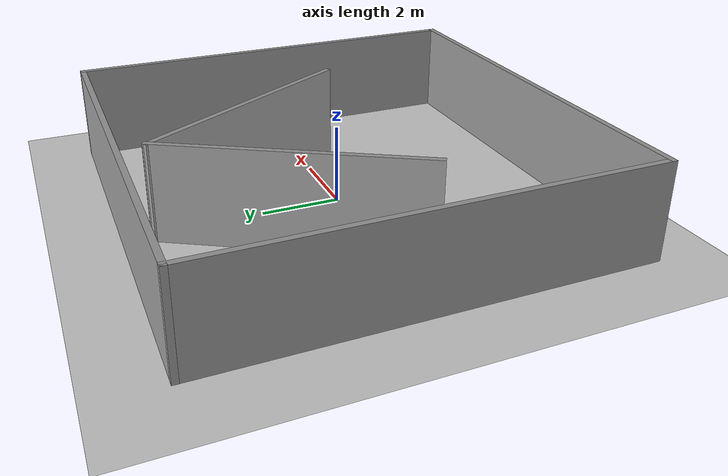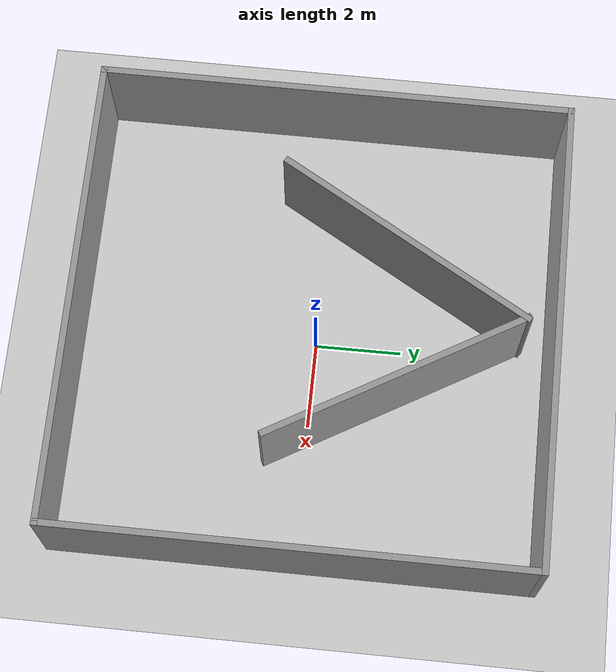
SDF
<sdf version="1.7">
 <world name="default">
  <light name="sun" type="directional">
   <pose>0 0 10 0 -0 0</pose>
   <diffuse>0.8 0.8 0.8 1</diffuse>
   <specular>0.1 0.1 0.1 1</specular>
   <attenuation>
    <range>1000</range>
    <constant>0.9</constant>
    <linear>0.01</linear>
    <quadratic>0.001</quadratic>
   </attenuation>
   <direction>-0.5 0.5 -1</direction>
   <spot><inner_angle>0</inner_angle><outer_angle>0</outer_angle><falloff>0</falloff></spot>
  </light>
  <model name="ground_plane">
   <static>1</static>
   <link name="link">
    <collision name="collision">
     <geometry><plane><normal>0 0 1</normal><size>100 100</size></plane></geometry>
     <surface><friction><ode><mu>100</mu><mu2>50</mu2></ode></friction></surface>
    </collision>
    <visual name="visual">
     <cast_shadows>0</cast_shadows>
     <geometry><plane><normal>0 0 1</normal><size>100 100</size></plane></geometry>
     <material>
      <script><uri>file://media/materials/scripts/gazebo.material</uri><name>Gazebo/Grey</name></script>
     </material>
    </visual>
   </link>
  </model>
  <gravity>0 0 -9.8</gravity>
  <magnetic_field>6e-06 2.3e-05 -4.2e-05</magnetic_field>
  <atmosphere type="adiabatic"/>
  <physics name="default_physics" default="0" type="ode">
   <max_step_size>0.001</max_step_size>
   <real_time_factor>1</real_time_factor>
   <real_time_update_rate>1000</real_time_update_rate>
  </physics>
  <scene><ambient>0.4 0.4 0.4 1</ambient><background>0.7 0.7 0.7 1</background><shadows>1</shadows></scene>
  <spherical_coordinates>
   <surface_model>EARTH_WGS84</surface_model>
   <latitude_deg>0</latitude_deg>
   <longitude_deg>0</longitude_deg>
   <elevation>0</elevation>
   <heading_deg>0</heading_deg>
  </spherical_coordinates>
  <model name="10x10m">
   <pose>-0.052022 -0.05796 0 0 -0 0</pose>
   <link name="Wall_10">
    <collision name="Wall_10_Collision">
     <geometry><box><size>11 0.15 2.5</size></box></geometry>
     <pose>0 0 1.25 0 -0 0</pose>
    </collision>
    <visual name="Wall_10_Visual">
     <pose>0 0 1.25 0 -0 0</pose>
     <geometry><box><size>11 0.15 2.5</size></box></geometry>
     <material>
      <script><uri>file://media/materials/scripts/gazebo.material</uri><name>Gazebo/Grey</name></script>
      <ambient>1 1 1 1</ambient>
     </material>
     <meta><layer>0</layer></meta>
    </visual>
    <pose>0 5.46413 0 0 -0 3.14159</pose>
   </link>
   <link name="Wall_6">
    <collision name="Wall_6_Collision">
     <geometry><box><size>11.0783 0.15 2.5</size></box></geometry>
     <pose>0 0 1.25 0 -0 0</pose>
    </collision>
    <visual name="Wall_6_Visual">
     <pose>0 0 1.25 0 -0 0</pose>
     <geometry><box><size>11.0783 0.15 2.5</size></box></geometry>
     <material>
      <script><uri>file://media/materials/scripts/gazebo.material</uri><name>Gazebo/Grey</name></script>
      <ambient>1 1 1 1</ambient>
     </material>
     <meta><layer>0</layer></meta>
    </visual>
    <pose>-5.425 -0 0 0 -0 -1.5708</pose>
   </link>
   <link name="Wall_8">
    <collision name="Wall_8_Collision">
     <geometry><box><size>11 0.15 2.5</size></box></geometry>
     <pose>0 0 1.25 0 -0 0</pose>
    </collision>
    <visual name="Wall_8_Visual">
     <pose>0 0 1.25 0 -0 0</pose>
     <geometry><box><size>11 0.15 2.5</size></box></geometry>
     <material>
      <script><uri>file://media/materials/scripts/gazebo.material</uri><name>Gazebo/Grey</name></script>
      <ambient>1 1 1 1</ambient>
     </material>
     <meta><layer>0</layer></meta>
    </visual>
    <pose>0 -5.46413 0 0 -0 0</pose>
   </link>
   <link name="Wall_9">
    <collision name="Wall_9_Collision">
     <geometry><box><size>11.0783 0.15 2.5</size></box></geometry>
     <pose>0 0 1.25 0 -0 0</pose>
    </collision>
    <visual name="Wall_9_Visual">
     <pose>0 0 1.25 0 -0 0</pose>
     <geometry><box><size>11.0783 0.15 2.5</size></box></geometry>
     <material>
      <script><uri>file://media/materials/scripts/gazebo.material</uri><name>Gazebo/Grey</name></script>
      <ambient>1 1 1 1</ambient>
     </material>
     <meta><layer>0</layer></meta>
    </visual>
    <pose>5.425 -0 0 0 -0 1.5708</pose>
   </link>
   <static>1</static>
  </model>
  <model name="TD4">
   <pose>-0.32687 1.85782 0 0 -0 0</pose>
   <link name="Wall_0">
    <collision name="Wall_0_Collision">
     <geometry><box><size>6.75 0.15 2.5</size></box></geometry>
     <pose>0 0 1.25 0 -0 0</pose>
    </collision>
    <visual name="Wall_0_Visual">
     <pose>0 0 1.25 0 -0 0</pose>
     <geometry><box><size>6.75 0.15 2.5</size></box></geometry>
     <material>
      <script><uri>file://media/materials/scripts/gazebo.material</uri><name>Gazebo/Grey</name></script>
      <ambient>1 1 1 1</ambient>
     </material>
     <meta><layer>0</layer></meta>
    </visual>
    <pose>-1.60373 0 0 0 -0 1.0472</pose>
   </link>
   <link name="Wall_1">
    <collision name="Wall_1_Collision">
     <geometry><box><size>6.61515 0.15 2.5</size></box></geometry>
     <pose>0 0 1.25 0 -0 0</pose>
    </collision>
    <visual name="Wall_1_Visual">
     <pose>0 0 1.25 0 -0 0</pose>
     <geometry><box><size>6.61515 0.15 2.5</size></box></geometry>
     <material>
      <script><uri>file://media/materials/scripts/gazebo.material</uri><name>Gazebo/Grey</name></script>
      <ambient>1 1 1 1</ambient>
     </material>
     <meta><layer>0</layer></meta>
    </visual>
    <pose>1.63844 0.057827 0 0 -0 -1.04755</pose>
   </link>
   <static>1</static>
  </model>
 </world>
</sdf>
